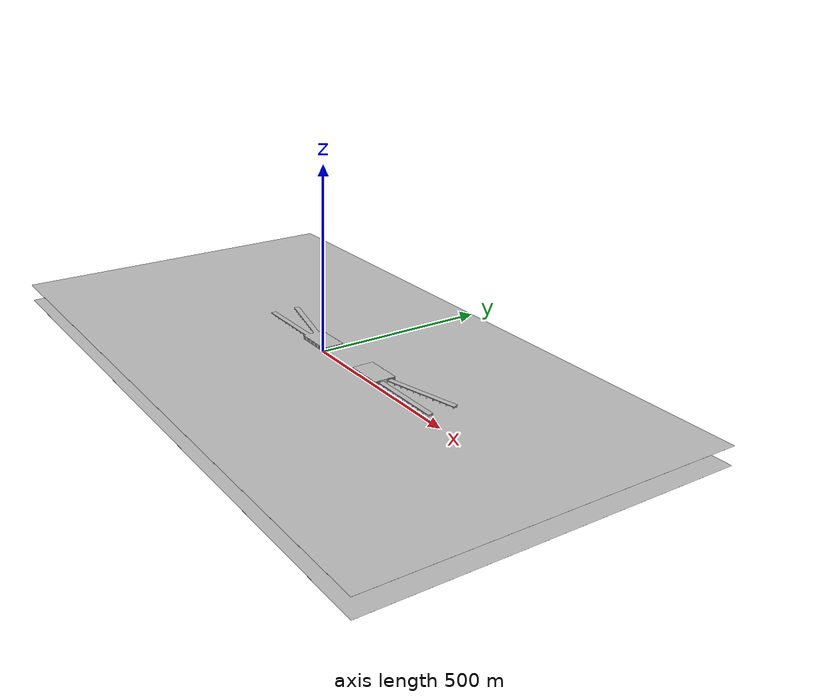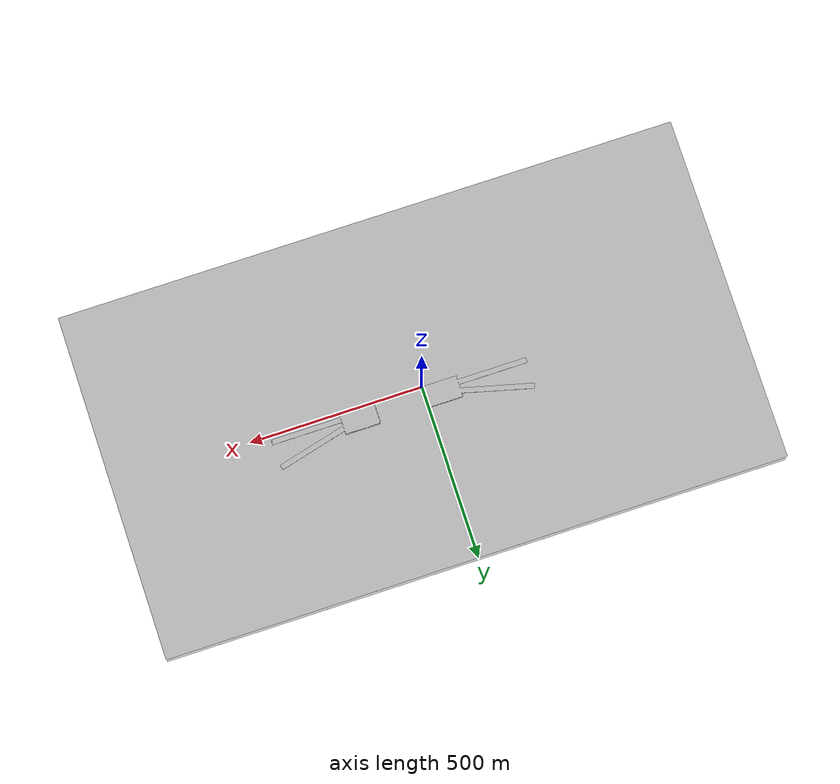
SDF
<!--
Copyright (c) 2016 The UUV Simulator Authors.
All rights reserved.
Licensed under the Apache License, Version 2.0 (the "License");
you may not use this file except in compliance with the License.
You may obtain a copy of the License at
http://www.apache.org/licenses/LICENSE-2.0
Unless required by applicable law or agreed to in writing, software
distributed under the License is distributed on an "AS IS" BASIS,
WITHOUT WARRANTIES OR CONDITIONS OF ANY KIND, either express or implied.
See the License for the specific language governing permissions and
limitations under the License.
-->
<?xml version="1.0" ?>
<sdf version="1.5">
  <world name="chesapeake_bay">
    <physics name="default_physics" default="true" type="ode">
      <max_step_size>0.002</max_step_size>
      <real_time_factor>1</real_time_factor>
      <real_time_update_rate>500</real_time_update_rate>
      <ode>
        <solver>
          <type>quick</type>
          <iters>50</iters>
          <sor>0.5</sor>
        </solver>
      </ode>
    </physics>
    <scene>
      <ambient>0.01 0.01 0.01 1.0</ambient>
      <sky>
        <clouds>
          <speed>12</speed>
        </clouds>
      </sky>
      <shadows>0</shadows>
    </scene>

    <!-- Origin placed somewhere in the middle of the North Sea  -->
    <spherical_coordinates>
      <latitude_deg>56.71897669633431</latitude_deg>
      <longitude_deg>3.515625</longitude_deg>
    </spherical_coordinates>

    <!-- Global light source -->
    <include>
      <uri>model://sun</uri>
    </include>

    <!-- Bounding box with sea surface -->
    <include>
      <uri>model://chesapeake_bay</uri>
      <pose>0 0 0 0 0 0</pose>
    </include>

    <plugin name="underwater_current_plugin" filename="libuuv_underwater_current_ros_plugin.so">
      <namespace>hydrodynamics</namespace>
      <constant_current>
        <topic>current_velocity</topic>
        <velocity>
          <mean>0</mean>
          <min>0</min>
          <max>5</max>
          <mu>0.0</mu>
          <noiseAmp>0.0</noiseAmp>
        </velocity>

        <horizontal_angle>
          <mean>0</mean>
          <min>-3.141592653589793238</min>
          <max>3.141592653589793238</max>
          <mu>0.0</mu>
          <noiseAmp>0.0</noiseAmp>
        </horizontal_angle>

        <vertical_angle>
          <mean>0</mean>
          <min>-3.141592653589793238</min>
          <max>3.141592653589793238</max>
          <mu>0.0</mu>
          <noiseAmp>0.0</noiseAmp>
        </vertical_angle>
      </constant_current>
    </plugin>

    <plugin name="sc_interface" filename="libuuv_sc_ros_interface_plugin.so"/>

  </world>
</sdf>

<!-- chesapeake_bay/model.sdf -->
<sdf version="1.5">

  <model name="chesapeake_bay">
      <static>true</static>
      <link name="link">
        <visual name="ground">
          <cast_shadows>false</cast_shadows>
          <pose>0 0 -50 0 0 0</pose>
          <geometry>
            <box>
              <size>1800 1000 .1</size>
            </box>
          </geometry>
          <material>
            <script>
              <uri>file://Media/materials/scripts/sand.material</uri>
              <name>UUVSimulator/SandAndStones</name>
            </script>
          </material>
        </visual>

        <collision name="ground">
          <pose> 0 0 -50 0 0 0</pose>
          <geometry>
            <box>
              <size>1800 1000 .1</size>
            </box>
          </geometry>
        </collision>

      <visual name="surface">
        <pose>0 -1 0 0 0 0</pose>
        <cast_shadows>false</cast_shadows>
        <geometry>
          <box>
            <size>1800 1000 .1</size>
          </box>
        </geometry>
        <material>
          <script>
            <uri>file://Media/materials/scripts/water.material</uri>
            <name>UUVSimulator/StaticWater</name>
          </script>
        </material>
      </visual>

      <visual name="platform">
          <cast_shadows>false</cast_shadows>
          <pose>70 30 0 0 0 0</pose>
          <geometry>
              <mesh><uri>model://chesapeake_bay/meshes/bay.stl</uri><scale>100 100 100 </scale></mesh>
          </geometry>

      </visual>

      <collision name="platform">
          <pose>70 30 0 0 0 0</pose>
          <geometry>
              <mesh><uri>model://chesapeake_bay/meshes/bay.stl</uri><scale>100 100 100</scale></mesh>
          </geometry>
      </collision>

    </link>
  </model>
</sdf>
